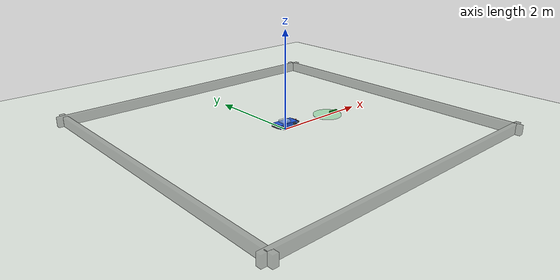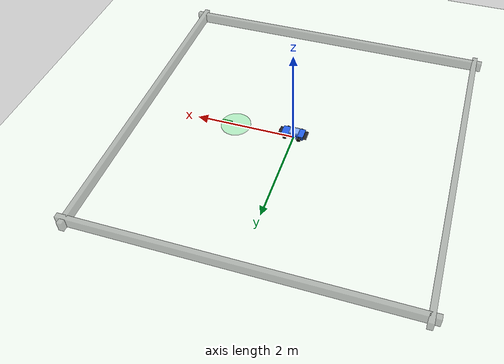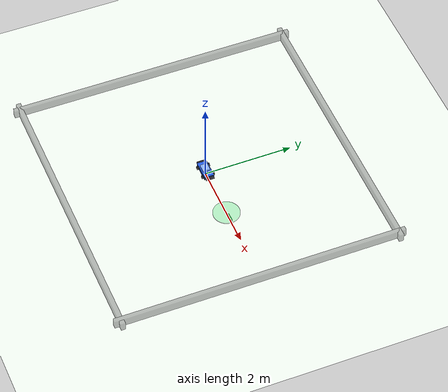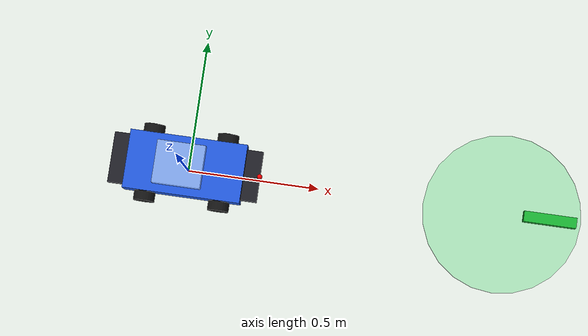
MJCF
<mujoco model="toy_car_navigation">
    <option gravity="0 0 -9.81" timestep="0.05"/>

    <visual>
        <headlight ambient="0.4 0.4 0.4" diffuse="0.7 0.7 0.7" specular="0.1 0.1 0.1"/>
    </visual>

    <worldbody>
        <light pos="0 0 6" dir="0 0 -1"/>
        <geom
            name="ground"
            type="plane"
            size="6 6 0.1"
            rgba="0.9 0.93 0.9 1"/>

        <geom type="box" pos="0 3.15 0.1" size="3.3 0.05 0.1" rgba="0.3 0.3 0.3 0.4" contype="0" conaffinity="0"/>
        <geom type="box" pos="0 -3.15 0.1" size="3.3 0.05 0.1" rgba="0.3 0.3 0.3 0.4" contype="0" conaffinity="0"/>
        <geom type="box" pos="3.15 0 0.1" size="0.05 3.3 0.1" rgba="0.3 0.3 0.3 0.4" contype="0" conaffinity="0"/>
        <geom type="box" pos="-3.15 0 0.1" size="0.05 3.3 0.1" rgba="0.3 0.3 0.3 0.4" contype="0" conaffinity="0"/>

        <body name="goal" mocap="true" pos="1.2 0 0.02">
            <geom
                type="cylinder"
                size="0.30 0.012"
                rgba="0.1 0.8 0.3 0.28"
                contype="0"
                conaffinity="0"/>
            <geom
                type="box"
                pos="0.18 0 0.03"
                size="0.10 0.02 0.02"
                rgba="0.1 0.7 0.2 0.95"
                contype="0"
                conaffinity="0"/>
        </body>

        <body name="car" pos="0 0 0.12">
            <joint name="car_x" type="slide" axis="1 0 0"/>
            <joint name="car_y" type="slide" axis="0 1 0"/>
            <joint name="car_yaw" type="hinge" axis="0 0 1"/>

            <geom
                name="chassis"
                type="box"
                size="0.22 0.11 0.04"
                rgba="0.13 0.35 0.87 1"/>
            <geom
                name="cabin"
                type="box"
                pos="-0.02 0 0.055"
                size="0.09 0.08 0.03"
                rgba="0.84 0.93 1 0.55"/>
            <geom
                name="front_bumper"
                type="box"
                pos="0.25 0 0"
                size="0.03 0.095 0.016"
                rgba="0.12 0.12 0.15 1"/>
            <geom
                name="rear_bumper"
                type="box"
                pos="-0.25 0 0"
                size="0.03 0.095 0.016"
                rgba="0.12 0.12 0.15 1"/>
            <site name="car_nose" pos="0.28 0 0.02" size="0.01" rgba="1 0 0 1"/>

            <body name="front_left_mount" pos="0.14 0.12 -0.02">
                <inertial pos="0 0 0" mass="0.01" diaginertia="1e-5 1e-5 1e-5"/>
                <joint name="front_left_steer" type="hinge" axis="0 0 1" limited="true" range="-0.7 0.7"/>
                <body name="front_left_wheel">
                    <joint name="front_left_spin" type="hinge" axis="0 1 0"/>
                    <geom type="cylinder" size="0.04 0.025" quat="0.7071068 0.7071068 0 0" rgba="0.08 0.08 0.08 1"/>
                </body>
            </body>

            <body name="front_right_mount" pos="0.14 -0.12 -0.02">
                <inertial pos="0 0 0" mass="0.01" diaginertia="1e-5 1e-5 1e-5"/>
                <joint name="front_right_steer" type="hinge" axis="0 0 1" limited="true" range="-0.7 0.7"/>
                <body name="front_right_wheel">
                    <joint name="front_right_spin" type="hinge" axis="0 1 0"/>
                    <geom type="cylinder" size="0.04 0.025" quat="0.7071068 0.7071068 0 0" rgba="0.08 0.08 0.08 1"/>
                </body>
            </body>

            <body name="rear_left_wheel" pos="-0.14 0.12 -0.02">
                <joint name="rear_left_spin" type="hinge" axis="0 1 0"/>
                <geom type="cylinder" size="0.04 0.025" quat="0.7071068 0.7071068 0 0" rgba="0.08 0.08 0.08 1"/>
            </body>

            <body name="rear_right_wheel" pos="-0.14 -0.12 -0.02">
                <joint name="rear_right_spin" type="hinge" axis="0 1 0"/>
                <geom type="cylinder" size="0.04 0.025" quat="0.7071068 0.7071068 0 0" rgba="0.08 0.08 0.08 1"/>
            </body>
        </body>

        <camera name="overview" pos="0 0 6.5" quat="1 0 0 0"/>
    </worldbody>
</mujoco>
